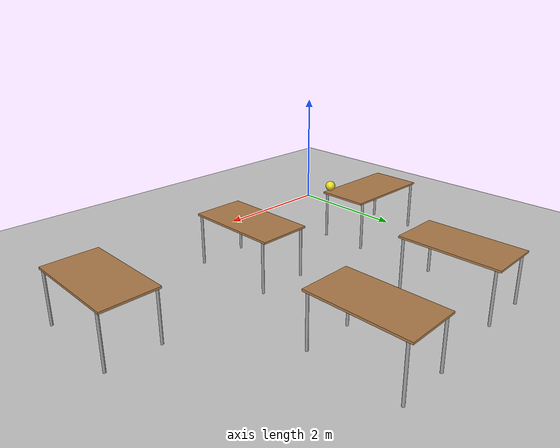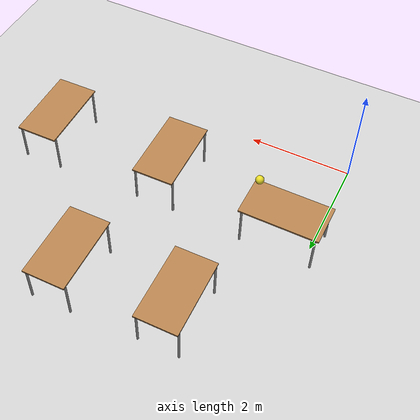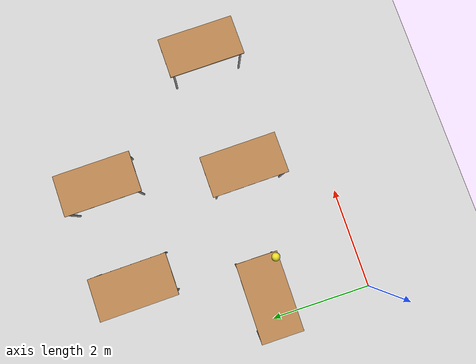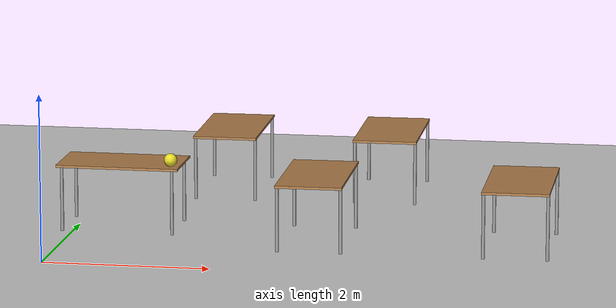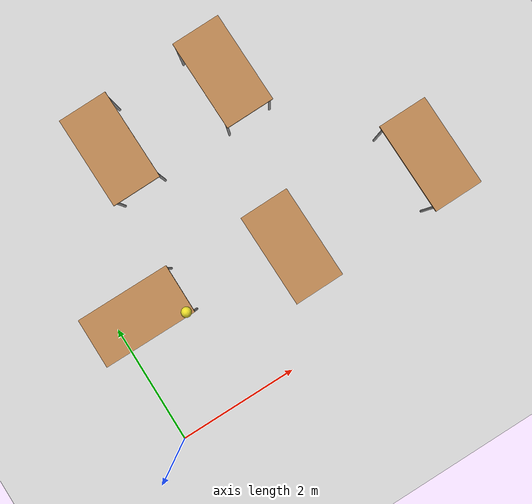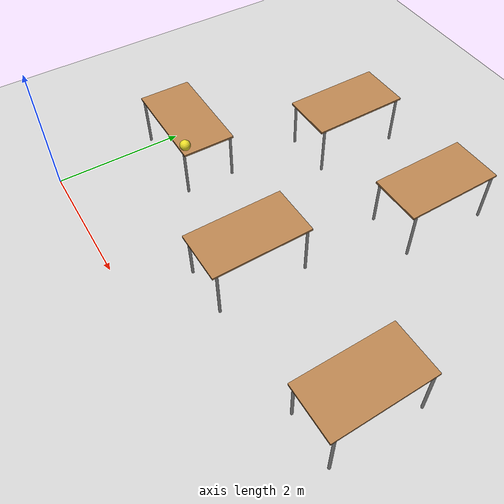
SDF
<sdf version="1.7">
 <world name="default">
  <model name="ground_plane">
   <static>1</static>
   <link name="link">
    <collision name="collision">
     <geometry><plane><normal>0 0 1</normal><size>100 100</size></plane></geometry>
     <surface>
      <contact><collide_bitmask>65535</collide_bitmask></contact>
      <friction><ode><mu>100</mu><mu2>50</mu2></ode></friction>
     </surface>
    </collision>
    <visual name="visual">
     <cast_shadows>0</cast_shadows>
     <geometry><plane><normal>0 0 1</normal><size>100 100</size></plane></geometry>
     <material>
      <script><uri>file://media/materials/scripts/gazebo.material</uri><name>Gazebo/Grey</name></script>
     </material>
    </visual>
   </link>
  </model>
  <model name="table_clone_clone">
   <link name="link">
    <inertial>
     <mass>1</mass>
     <pose>1.2 0 0.8 0 -0 0</pose>
     <inertia><ixx>1</ixx><ixy>0</ixy><ixz>0</ixz><iyy>1</iyy><iyz>0</iyz><izz>1</izz></inertia>
    </inertial>
    <visual name="back_right_leg">
     <pose>-0.68 -0.38 0.4 0 -0 0</pose>
     <geometry><cylinder><radius>0.02</radius><length>0.8</length></cylinder></geometry>
     <material>
      <script><uri>file://media/materials/scripts/gazebo.material</uri><name>Gazebo/Grey</name></script>
      <shader type="pixel"><normal_map>__default__</normal_map></shader>
      <ambient>0.3 0.3 0.3 1</ambient>
      <diffuse>0.7 0.7 0.7 1</diffuse>
      <specular>0.01 0.01 0.01 1</specular>
      <emissive>0 0 0 1</emissive>
     </material>
    </visual>
    <visual name="front_right_leg">
     <pose>0.68 -0.38 0.4 0 -0 0</pose>
     <geometry><cylinder><radius>0.02</radius><length>0.8</length></cylinder></geometry>
     <material>
      <script><uri>file://media/materials/scripts/gazebo.material</uri><name>Gazebo/Grey</name></script>
      <shader type="pixel"><normal_map>__default__</normal_map></shader>
      <ambient>0.3 0.3 0.3 1</ambient>
      <diffuse>0.7 0.7 0.7 1</diffuse>
      <specular>0.01 0.01 0.01 1</specular>
      <emissive>0 0 0 1</emissive>
     </material>
    </visual>
    <visual name="visual1">
     <pose>0 0 0.8 0 -0 0</pose>
     <geometry><box><size>1.5 0.8 0.03</size></box></geometry>
     <material>
      <script><uri>file://media/materials/scripts/gazebo.material</uri><name>Gazebo/Wood</name></script>
      <shader type="pixel"><normal_map>__default__</normal_map></shader>
      <ambient>1 1 1 1</ambient>
      <diffuse>1 1 1 1</diffuse>
      <specular>0.2 0.2 0.2 1</specular>
      <emissive>0 0 0 1</emissive>
     </material>
    </visual>
    <visual name="front_left_leg">
     <pose>0.68 0.38 0.4 0 -0 0</pose>
     <geometry><cylinder><radius>0.02</radius><length>0.8</length></cylinder></geometry>
     <material>
      <script><uri>file://media/materials/scripts/gazebo.material</uri><name>Gazebo/Grey</name></script>
      <shader type="pixel"><normal_map>__default__</normal_map></shader>
      <ambient>0.3 0.3 0.3 1</ambient>
      <diffuse>0.7 0.7 0.7 1</diffuse>
      <specular>0.01 0.01 0.01 1</specular>
      <emissive>0 0 0 1</emissive>
     </material>
    </visual>
    <visual name="back_left_leg">
     <pose>-0.68 0.38 0.4 0 -0 0</pose>
     <geometry><cylinder><radius>0.02</radius><length>0.8</length></cylinder></geometry>
     <material>
      <script><uri>file://media/materials/scripts/gazebo.material</uri><name>Gazebo/Grey</name></script>
      <shader type="pixel"><normal_map>__default__</normal_map></shader>
      <ambient>0.3 0.3 0.3 1</ambient>
      <diffuse>0.7 0.7 0.7 1</diffuse>
      <specular>0.01 0.01 0.01 1</specular>
      <emissive>0 0 0 1</emissive>
     </material>
    </visual>
    <collision name="back_right_leg">
     <pose>-0.68 -0.38 0.4 0 -0 0</pose>
     <geometry><cylinder><radius>0.02</radius><length>0.8</length></cylinder></geometry>
     <surface>
      <friction>
       <ode><mu>1</mu><mu2>1</mu2><fdir1>0 0 0</fdir1><slip1>0</slip1><slip2>0</slip2></ode>
       <torsional>
        <coefficient>1</coefficient>
        <patch_radius>0</patch_radius>
        <surface_radius>0</surface_radius>
        <use_patch_radius>1</use_patch_radius>
        <ode><slip>0</slip></ode>
       </torsional>
      </friction>
      <bounce><restitution_coefficient>0</restitution_coefficient><threshold>1e+06</threshold></bounce>
      <contact>
       <collide_without_contact>0</collide_without_contact>
       <collide_without_contact_bitmask>1</collide_without_contact_bitmask>
       <collide_bitmask>1</collide_bitmask>
       <ode>
        <soft_cfm>0</soft_cfm>
        <soft_erp>0.2</soft_erp>
        <kp>1e+13</kp>
        <kd>1</kd>
        <max_vel>0.01</max_vel>
        <min_depth>0</min_depth>
       </ode>
       <bullet>
        <split_impulse>1</split_impulse>
        <split_impulse_penetration_threshold>-0.01</split_impulse_penetration_threshold>
        <soft_cfm>0</soft_cfm>
        <soft_erp>0.2</soft_erp>
        <kp>1e+13</kp>
        <kd>1</kd>
       </bullet>
      </contact>
     </surface>
    </collision>
    <collision name="front_left_leg">
     <pose>0.68 0.38 0.4 0 -0 0</pose>
     <geometry><cylinder><radius>0.02</radius><length>0.8</length></cylinder></geometry>
     <surface>
      <friction>
       <ode><mu>1</mu><mu2>1</mu2><fdir1>0 0 0</fdir1><slip1>0</slip1><slip2>0</slip2></ode>
       <torsional>
        <coefficient>1</coefficient>
        <patch_radius>0</patch_radius>
        <surface_radius>0</surface_radius>
        <use_patch_radius>1</use_patch_radius>
        <ode><slip>0</slip></ode>
       </torsional>
      </friction>
      <bounce><restitution_coefficient>0</restitution_coefficient><threshold>1e+06</threshold></bounce>
      <contact>
       <collide_without_contact>0</collide_without_contact>
       <collide_without_contact_bitmask>1</collide_without_contact_bitmask>
       <collide_bitmask>1</collide_bitmask>
       <ode>
        <soft_cfm>0</soft_cfm>
        <soft_erp>0.2</soft_erp>
        <kp>1e+13</kp>
        <kd>1</kd>
        <max_vel>0.01</max_vel>
        <min_depth>0</min_depth>
       </ode>
       <bullet>
        <split_impulse>1</split_impulse>
        <split_impulse_penetration_threshold>-0.01</split_impulse_penetration_threshold>
        <soft_cfm>0</soft_cfm>
        <soft_erp>0.2</soft_erp>
        <kp>1e+13</kp>
        <kd>1</kd>
       </bullet>
      </contact>
     </surface>
    </collision>
    <collision name="back_left_leg">
     <pose>-0.68 0.38 0.4 0 -0 0</pose>
     <geometry><cylinder><radius>0.02</radius><length>0.8</length></cylinder></geometry>
     <surface>
      <friction>
       <ode><mu>1</mu><mu2>1</mu2><fdir1>0 0 0</fdir1><slip1>0</slip1><slip2>0</slip2></ode>
       <torsional>
        <coefficient>1</coefficient>
        <patch_radius>0</patch_radius>
        <surface_radius>0</surface_radius>
        <use_patch_radius>1</use_patch_radius>
        <ode><slip>0</slip></ode>
       </torsional>
      </friction>
      <bounce><restitution_coefficient>0</restitution_coefficient><threshold>1e+06</threshold></bounce>
      <contact>
       <collide_without_contact>0</collide_without_contact>
       <collide_without_contact_bitmask>1</collide_without_contact_bitmask>
       <collide_bitmask>1</collide_bitmask>
       <ode>
        <soft_cfm>0</soft_cfm>
        <soft_erp>0.2</soft_erp>
        <kp>1e+13</kp>
        <kd>1</kd>
        <max_vel>0.01</max_vel>
        <min_depth>0</min_depth>
       </ode>
       <bullet>
        <split_impulse>1</split_impulse>
        <split_impulse_penetration_threshold>-0.01</split_impulse_penetration_threshold>
        <soft_cfm>0</soft_cfm>
        <soft_erp>0.2</soft_erp>
        <kp>1e+13</kp>
        <kd>1</kd>
       </bullet>
      </contact>
     </surface>
    </collision>
    <collision name="surface">
     <pose>0 0 0.8 0 -0 0</pose>
     <geometry><box><size>1.5 0.8 0.03</size></box></geometry>
     <surface>
      <friction>
       <ode><mu>0.6</mu><mu2>0.6</mu2><fdir1>0 0 0</fdir1><slip1>0</slip1><slip2>0</slip2></ode>
       <torsional>
        <coefficient>1</coefficient>
        <patch_radius>0</patch_radius>
        <surface_radius>0</surface_radius>
        <use_patch_radius>1</use_patch_radius>
        <ode><slip>0</slip></ode>
       </torsional>
      </friction>
      <bounce><restitution_coefficient>0</restitution_coefficient><threshold>1e+06</threshold></bounce>
      <contact>
       <collide_without_contact>0</collide_without_contact>
       <collide_without_contact_bitmask>1</collide_without_contact_bitmask>
       <collide_bitmask>1</collide_bitmask>
       <ode>
        <soft_cfm>0</soft_cfm>
        <soft_erp>0.2</soft_erp>
        <kp>1e+13</kp>
        <kd>1</kd>
        <max_vel>0.01</max_vel>
        <min_depth>0</min_depth>
       </ode>
       <bullet>
        <split_impulse>1</split_impulse>
        <split_impulse_penetration_threshold>-0.01</split_impulse_penetration_threshold>
        <soft_cfm>0</soft_cfm>
        <soft_erp>0.2</soft_erp>
        <kp>1e+13</kp>
        <kd>1</kd>
       </bullet>
      </contact>
     </surface>
    </collision>
    <collision name="front_right_leg">
     <pose>0.68 -0.38 0.4 0 -0 0</pose>
     <geometry><cylinder><radius>0.02</radius><length>0.8</length></cylinder></geometry>
     <surface>
      <friction>
       <ode><mu>1</mu><mu2>1</mu2><fdir1>0 0 0</fdir1><slip1>0</slip1><slip2>0</slip2></ode>
       <torsional>
        <coefficient>1</coefficient>
        <patch_radius>0</patch_radius>
        <surface_radius>0</surface_radius>
        <use_patch_radius>1</use_patch_radius>
        <ode><slip>0</slip></ode>
       </torsional>
      </friction>
      <bounce><restitution_coefficient>0</restitution_coefficient><threshold>1e+06</threshold></bounce>
      <contact>
       <collide_without_contact>0</collide_without_contact>
       <collide_without_contact_bitmask>1</collide_without_contact_bitmask>
       <collide_bitmask>1</collide_bitmask>
       <ode>
        <soft_cfm>0</soft_cfm>
        <soft_erp>0.2</soft_erp>
        <kp>1e+13</kp>
        <kd>1</kd>
        <max_vel>0.01</max_vel>
        <min_depth>0</min_depth>
       </ode>
       <bullet>
        <split_impulse>1</split_impulse>
        <split_impulse_penetration_threshold>-0.01</split_impulse_penetration_threshold>
        <soft_cfm>0</soft_cfm>
        <soft_erp>0.2</soft_erp>
        <kp>1e+13</kp>
        <kd>1</kd>
       </bullet>
      </contact>
     </surface>
    </collision>
   </link>
   <static>1</static>
   <pose>1.49993 4.29823 0 0 0 -1.55553</pose>
  </model>
  <model name="table_clone_clone_0">
   <link name="link">
    <inertial>
     <mass>1</mass>
     <pose>1.2 0 0.8 0 -0 0</pose>
     <inertia><ixx>1</ixx><ixy>0</ixy><ixz>0</ixz><iyy>1</iyy><iyz>0</iyz><izz>1</izz></inertia>
    </inertial>
    <visual name="back_right_leg">
     <pose>-0.68 -0.38 0.4 0 -0 0</pose>
     <geometry><cylinder><radius>0.02</radius><length>0.8</length></cylinder></geometry>
     <material>
      <script><uri>file://media/materials/scripts/gazebo.material</uri><name>Gazebo/Grey</name></script>
      <shader type="pixel"><normal_map>__default__</normal_map></shader>
      <ambient>0.3 0.3 0.3 1</ambient>
      <diffuse>0.7 0.7 0.7 1</diffuse>
      <specular>0.01 0.01 0.01 1</specular>
      <emissive>0 0 0 1</emissive>
     </material>
    </visual>
    <visual name="front_right_leg">
     <pose>0.68 -0.38 0.4 0 -0 0</pose>
     <geometry><cylinder><radius>0.02</radius><length>0.8</length></cylinder></geometry>
     <material>
      <script><uri>file://media/materials/scripts/gazebo.material</uri><name>Gazebo/Grey</name></script>
      <shader type="pixel"><normal_map>__default__</normal_map></shader>
      <ambient>0.3 0.3 0.3 1</ambient>
      <diffuse>0.7 0.7 0.7 1</diffuse>
      <specular>0.01 0.01 0.01 1</specular>
      <emissive>0 0 0 1</emissive>
     </material>
    </visual>
    <visual name="visual1">
     <pose>0 0 0.8 0 -0 0</pose>
     <geometry><box><size>1.5 0.8 0.03</size></box></geometry>
     <material>
      <script><uri>file://media/materials/scripts/gazebo.material</uri><name>Gazebo/Wood</name></script>
      <shader type="pixel"><normal_map>__default__</normal_map></shader>
      <ambient>1 1 1 1</ambient>
      <diffuse>1 1 1 1</diffuse>
      <specular>0.2 0.2 0.2 1</specular>
      <emissive>0 0 0 1</emissive>
     </material>
    </visual>
    <visual name="front_left_leg">
     <pose>0.68 0.38 0.4 0 -0 0</pose>
     <geometry><cylinder><radius>0.02</radius><length>0.8</length></cylinder></geometry>
     <material>
      <script><uri>file://media/materials/scripts/gazebo.material</uri><name>Gazebo/Grey</name></script>
      <shader type="pixel"><normal_map>__default__</normal_map></shader>
      <ambient>0.3 0.3 0.3 1</ambient>
      <diffuse>0.7 0.7 0.7 1</diffuse>
      <specular>0.01 0.01 0.01 1</specular>
      <emissive>0 0 0 1</emissive>
     </material>
    </visual>
    <visual name="back_left_leg">
     <pose>-0.68 0.38 0.4 0 -0 0</pose>
     <geometry><cylinder><radius>0.02</radius><length>0.8</length></cylinder></geometry>
     <material>
      <script><uri>file://media/materials/scripts/gazebo.material</uri><name>Gazebo/Grey</name></script>
      <shader type="pixel"><normal_map>__default__</normal_map></shader>
      <ambient>0.3 0.3 0.3 1</ambient>
      <diffuse>0.7 0.7 0.7 1</diffuse>
      <specular>0.01 0.01 0.01 1</specular>
      <emissive>0 0 0 1</emissive>
     </material>
    </visual>
    <collision name="back_right_leg">
     <pose>-0.68 -0.38 0.4 0 -0 0</pose>
     <geometry><cylinder><radius>0.02</radius><length>0.8</length></cylinder></geometry>
     <surface>
      <friction>
       <ode><mu>1</mu><mu2>1</mu2><fdir1>0 0 0</fdir1><slip1>0</slip1><slip2>0</slip2></ode>
       <torsional>
        <coefficient>1</coefficient>
        <patch_radius>0</patch_radius>
        <surface_radius>0</surface_radius>
        <use_patch_radius>1</use_patch_radius>
        <ode><slip>0</slip></ode>
       </torsional>
      </friction>
      <bounce><restitution_coefficient>0</restitution_coefficient><threshold>1e+06</threshold></bounce>
      <contact>
       <collide_without_contact>0</collide_without_contact>
       <collide_without_contact_bitmask>1</collide_without_contact_bitmask>
       <collide_bitmask>1</collide_bitmask>
       <ode>
        <soft_cfm>0</soft_cfm>
        <soft_erp>0.2</soft_erp>
        <kp>1e+13</kp>
        <kd>1</kd>
        <max_vel>0.01</max_vel>
        <min_depth>0</min_depth>
       </ode>
       <bullet>
        <split_impulse>1</split_impulse>
        <split_impulse_penetration_threshold>-0.01</split_impulse_penetration_threshold>
        <soft_cfm>0</soft_cfm>
        <soft_erp>0.2</soft_erp>
        <kp>1e+13</kp>
        <kd>1</kd>
       </bullet>
      </contact>
     </surface>
    </collision>
    <collision name="front_left_leg">
     <pose>0.68 0.38 0.4 0 -0 0</pose>
     <geometry><cylinder><radius>0.02</radius><length>0.8</length></cylinder></geometry>
     <surface>
      <friction>
       <ode><mu>1</mu><mu2>1</mu2><fdir1>0 0 0</fdir1><slip1>0</slip1><slip2>0</slip2></ode>
       <torsional>
        <coefficient>1</coefficient>
        <patch_radius>0</patch_radius>
        <surface_radius>0</surface_radius>
        <use_patch_radius>1</use_patch_radius>
        <ode><slip>0</slip></ode>
       </torsional>
      </friction>
      <bounce><restitution_coefficient>0</restitution_coefficient><threshold>1e+06</threshold></bounce>
      <contact>
       <collide_without_contact>0</collide_without_contact>
       <collide_without_contact_bitmask>1</collide_without_contact_bitmask>
       <collide_bitmask>1</collide_bitmask>
       <ode>
        <soft_cfm>0</soft_cfm>
        <soft_erp>0.2</soft_erp>
        <kp>1e+13</kp>
        <kd>1</kd>
        <max_vel>0.01</max_vel>
        <min_depth>0</min_depth>
       </ode>
       <bullet>
        <split_impulse>1</split_impulse>
        <split_impulse_penetration_threshold>-0.01</split_impulse_penetration_threshold>
        <soft_cfm>0</soft_cfm>
        <soft_erp>0.2</soft_erp>
        <kp>1e+13</kp>
        <kd>1</kd>
       </bullet>
      </contact>
     </surface>
    </collision>
    <collision name="back_left_leg">
     <pose>-0.68 0.38 0.4 0 -0 0</pose>
     <geometry><cylinder><radius>0.02</radius><length>0.8</length></cylinder></geometry>
     <surface>
      <friction>
       <ode><mu>1</mu><mu2>1</mu2><fdir1>0 0 0</fdir1><slip1>0</slip1><slip2>0</slip2></ode>
       <torsional>
        <coefficient>1</coefficient>
        <patch_radius>0</patch_radius>
        <surface_radius>0</surface_radius>
        <use_patch_radius>1</use_patch_radius>
        <ode><slip>0</slip></ode>
       </torsional>
      </friction>
      <bounce><restitution_coefficient>0</restitution_coefficient><threshold>1e+06</threshold></bounce>
      <contact>
       <collide_without_contact>0</collide_without_contact>
       <collide_without_contact_bitmask>1</collide_without_contact_bitmask>
       <collide_bitmask>1</collide_bitmask>
       <ode>
        <soft_cfm>0</soft_cfm>
        <soft_erp>0.2</soft_erp>
        <kp>1e+13</kp>
        <kd>1</kd>
        <max_vel>0.01</max_vel>
        <min_depth>0</min_depth>
       </ode>
       <bullet>
        <split_impulse>1</split_impulse>
        <split_impulse_penetration_threshold>-0.01</split_impulse_penetration_threshold>
        <soft_cfm>0</soft_cfm>
        <soft_erp>0.2</soft_erp>
        <kp>1e+13</kp>
        <kd>1</kd>
       </bullet>
      </contact>
     </surface>
    </collision>
    <collision name="surface">
     <pose>0 0 0.8 0 -0 0</pose>
     <geometry><box><size>1.5 0.8 0.03</size></box></geometry>
     <surface>
      <friction>
       <ode><mu>0.6</mu><mu2>0.6</mu2><fdir1>0 0 0</fdir1><slip1>0</slip1><slip2>0</slip2></ode>
       <torsional>
        <coefficient>1</coefficient>
        <patch_radius>0</patch_radius>
        <surface_radius>0</surface_radius>
        <use_patch_radius>1</use_patch_radius>
        <ode><slip>0</slip></ode>
       </torsional>
      </friction>
      <bounce><restitution_coefficient>0</restitution_coefficient><threshold>1e+06</threshold></bounce>
      <contact>
       <collide_without_contact>0</collide_without_contact>
       <collide_without_contact_bitmask>1</collide_without_contact_bitmask>
       <collide_bitmask>1</collide_bitmask>
       <ode>
        <soft_cfm>0</soft_cfm>
        <soft_erp>0.2</soft_erp>
        <kp>1e+13</kp>
        <kd>1</kd>
        <max_vel>0.01</max_vel>
        <min_depth>0</min_depth>
       </ode>
       <bullet>
        <split_impulse>1</split_impulse>
        <split_impulse_penetration_threshold>-0.01</split_impulse_penetration_threshold>
        <soft_cfm>0</soft_cfm>
        <soft_erp>0.2</soft_erp>
        <kp>1e+13</kp>
        <kd>1</kd>
       </bullet>
      </contact>
     </surface>
    </collision>
    <collision name="front_right_leg">
     <pose>0.68 -0.38 0.4 0 -0 0</pose>
     <geometry><cylinder><radius>0.02</radius><length>0.8</length></cylinder></geometry>
     <surface>
      <friction>
       <ode><mu>1</mu><mu2>1</mu2><fdir1>0 0 0</fdir1><slip1>0</slip1><slip2>0</slip2></ode>
       <torsional>
        <coefficient>1</coefficient>
        <patch_radius>0</patch_radius>
        <surface_radius>0</surface_radius>
        <use_patch_radius>1</use_patch_radius>
        <ode><slip>0</slip></ode>
       </torsional>
      </friction>
      <bounce><restitution_coefficient>0</restitution_coefficient><threshold>1e+06</threshold></bounce>
      <contact>
       <collide_without_contact>0</collide_without_contact>
       <collide_without_contact_bitmask>1</collide_without_contact_bitmask>
       <collide_bitmask>1</collide_bitmask>
       <ode>
        <soft_cfm>0</soft_cfm>
        <soft_erp>0.2</soft_erp>
        <kp>1e+13</kp>
        <kd>1</kd>
        <max_vel>0.01</max_vel>
        <min_depth>0</min_depth>
       </ode>
       <bullet>
        <split_impulse>1</split_impulse>
        <split_impulse_penetration_threshold>-0.01</split_impulse_penetration_threshold>
        <soft_cfm>0</soft_cfm>
        <soft_erp>0.2</soft_erp>
        <kp>1e+13</kp>
        <kd>1</kd>
       </bullet>
      </contact>
     </surface>
    </collision>
   </link>
   <static>1</static>
   <pose>3.51901 4.38519 0 0 0 -1.55553</pose>
  </model>
  <model name="table_clone_clone_8">
   <link name="link">
    <inertial>
     <mass>1</mass>
     <pose>1.2 0 0.8 0 -0 0</pose>
     <inertia><ixx>1</ixx><ixy>0</ixy><ixz>0</ixz><iyy>1</iyy><iyz>0</iyz><izz>1</izz></inertia>
    </inertial>
    <visual name="back_right_leg">
     <pose>-0.68 -0.38 0.4 0 -0 0</pose>
     <geometry><cylinder><radius>0.02</radius><length>0.8</length></cylinder></geometry>
     <material>
      <script><uri>file://media/materials/scripts/gazebo.material</uri><name>Gazebo/Grey</name></script>
      <shader type="pixel"><normal_map>__default__</normal_map></shader>
      <ambient>0.3 0.3 0.3 1</ambient>
      <diffuse>0.7 0.7 0.7 1</diffuse>
      <specular>0.01 0.01 0.01 1</specular>
      <emissive>0 0 0 1</emissive>
     </material>
    </visual>
    <visual name="front_right_leg">
     <pose>0.68 -0.38 0.4 0 -0 0</pose>
     <geometry><cylinder><radius>0.02</radius><length>0.8</length></cylinder></geometry>
     <material>
      <script><uri>file://media/materials/scripts/gazebo.material</uri><name>Gazebo/Grey</name></script>
      <shader type="pixel"><normal_map>__default__</normal_map></shader>
      <ambient>0.3 0.3 0.3 1</ambient>
      <diffuse>0.7 0.7 0.7 1</diffuse>
      <specular>0.01 0.01 0.01 1</specular>
      <emissive>0 0 0 1</emissive>
     </material>
    </visual>
    <visual name="visual1">
     <pose>0 0 0.8 0 -0 0</pose>
     <geometry><box><size>1.5 0.8 0.03</size></box></geometry>
     <material>
      <script><uri>file://media/materials/scripts/gazebo.material</uri><name>Gazebo/Wood</name></script>
      <shader type="pixel"><normal_map>__default__</normal_map></shader>
      <ambient>1 1 1 1</ambient>
      <diffuse>1 1 1 1</diffuse>
      <specular>0.2 0.2 0.2 1</specular>
      <emissive>0 0 0 1</emissive>
     </material>
    </visual>
    <visual name="front_left_leg">
     <pose>0.68 0.38 0.4 0 -0 0</pose>
     <geometry><cylinder><radius>0.02</radius><length>0.8</length></cylinder></geometry>
     <material>
      <script><uri>file://media/materials/scripts/gazebo.material</uri><name>Gazebo/Grey</name></script>
      <shader type="pixel"><normal_map>__default__</normal_map></shader>
      <ambient>0.3 0.3 0.3 1</ambient>
      <diffuse>0.7 0.7 0.7 1</diffuse>
      <specular>0.01 0.01 0.01 1</specular>
      <emissive>0 0 0 1</emissive>
     </material>
    </visual>
    <visual name="back_left_leg">
     <pose>-0.68 0.38 0.4 0 -0 0</pose>
     <geometry><cylinder><radius>0.02</radius><length>0.8</length></cylinder></geometry>
     <material>
      <script><uri>file://media/materials/scripts/gazebo.material</uri><name>Gazebo/Grey</name></script>
      <shader type="pixel"><normal_map>__default__</normal_map></shader>
      <ambient>0.3 0.3 0.3 1</ambient>
      <diffuse>0.7 0.7 0.7 1</diffuse>
      <specular>0.01 0.01 0.01 1</specular>
      <emissive>0 0 0 1</emissive>
     </material>
    </visual>
    <collision name="back_right_leg">
     <pose>-0.68 -0.38 0.4 0 -0 0</pose>
     <geometry><cylinder><radius>0.02</radius><length>0.8</length></cylinder></geometry>
     <surface>
      <friction>
       <ode><mu>1</mu><mu2>1</mu2><fdir1>0 0 0</fdir1><slip1>0</slip1><slip2>0</slip2></ode>
       <torsional>
        <coefficient>1</coefficient>
        <patch_radius>0</patch_radius>
        <surface_radius>0</surface_radius>
        <use_patch_radius>1</use_patch_radius>
        <ode><slip>0</slip></ode>
       </torsional>
      </friction>
      <bounce><restitution_coefficient>0</restitution_coefficient><threshold>1e+06</threshold></bounce>
      <contact>
       <collide_without_contact>0</collide_without_contact>
       <collide_without_contact_bitmask>1</collide_without_contact_bitmask>
       <collide_bitmask>1</collide_bitmask>
       <ode>
        <soft_cfm>0</soft_cfm>
        <soft_erp>0.2</soft_erp>
        <kp>1e+13</kp>
        <kd>1</kd>
        <max_vel>0.01</max_vel>
        <min_depth>0</min_depth>
       </ode>
       <bullet>
        <split_impulse>1</split_impulse>
        <split_impulse_penetration_threshold>-0.01</split_impulse_penetration_threshold>
        <soft_cfm>0</soft_cfm>
        <soft_erp>0.2</soft_erp>
        <kp>1e+13</kp>
        <kd>1</kd>
       </bullet>
      </contact>
     </surface>
    </collision>
    <collision name="front_left_leg">
     <pose>0.68 0.38 0.4 0 -0 0</pose>
     <geometry><cylinder><radius>0.02</radius><length>0.8</length></cylinder></geometry>
     <surface>
      <friction>
       <ode><mu>1</mu><mu2>1</mu2><fdir1>0 0 0</fdir1><slip1>0</slip1><slip2>0</slip2></ode>
       <torsional>
        <coefficient>1</coefficient>
        <patch_radius>0</patch_radius>
        <surface_radius>0</surface_radius>
        <use_patch_radius>1</use_patch_radius>
        <ode><slip>0</slip></ode>
       </torsional>
      </friction>
      <bounce><restitution_coefficient>0</restitution_coefficient><threshold>1e+06</threshold></bounce>
      <contact>
       <collide_without_contact>0</collide_without_contact>
       <collide_without_contact_bitmask>1</collide_without_contact_bitmask>
       <collide_bitmask>1</collide_bitmask>
       <ode>
        <soft_cfm>0</soft_cfm>
        <soft_erp>0.2</soft_erp>
        <kp>1e+13</kp>
        <kd>1</kd>
        <max_vel>0.01</max_vel>
        <min_depth>0</min_depth>
       </ode>
       <bullet>
        <split_impulse>1</split_impulse>
        <split_impulse_penetration_threshold>-0.01</split_impulse_penetration_threshold>
        <soft_cfm>0</soft_cfm>
        <soft_erp>0.2</soft_erp>
        <kp>1e+13</kp>
        <kd>1</kd>
       </bullet>
      </contact>
     </surface>
    </collision>
    <collision name="back_left_leg">
     <pose>-0.68 0.38 0.4 0 -0 0</pose>
     <geometry><cylinder><radius>0.02</radius><length>0.8</length></cylinder></geometry>
     <surface>
      <friction>
       <ode><mu>1</mu><mu2>1</mu2><fdir1>0 0 0</fdir1><slip1>0</slip1><slip2>0</slip2></ode>
       <torsional>
        <coefficient>1</coefficient>
        <patch_radius>0</patch_radius>
        <surface_radius>0</surface_radius>
        <use_patch_radius>1</use_patch_radius>
        <ode><slip>0</slip></ode>
       </torsional>
      </friction>
      <bounce><restitution_coefficient>0</restitution_coefficient><threshold>1e+06</threshold></bounce>
      <contact>
       <collide_without_contact>0</collide_without_contact>
       <collide_without_contact_bitmask>1</collide_without_contact_bitmask>
       <collide_bitmask>1</collide_bitmask>
       <ode>
        <soft_cfm>0</soft_cfm>
        <soft_erp>0.2</soft_erp>
        <kp>1e+13</kp>
        <kd>1</kd>
        <max_vel>0.01</max_vel>
        <min_depth>0</min_depth>
       </ode>
       <bullet>
        <split_impulse>1</split_impulse>
        <split_impulse_penetration_threshold>-0.01</split_impulse_penetration_threshold>
        <soft_cfm>0</soft_cfm>
        <soft_erp>0.2</soft_erp>
        <kp>1e+13</kp>
        <kd>1</kd>
       </bullet>
      </contact>
     </surface>
    </collision>
    <collision name="surface">
     <pose>0 0 0.8 0 -0 0</pose>
     <geometry><box><size>1.5 0.8 0.03</size></box></geometry>
     <surface>
      <friction>
       <ode><mu>0.6</mu><mu2>0.6</mu2><fdir1>0 0 0</fdir1><slip1>0</slip1><slip2>0</slip2></ode>
       <torsional>
        <coefficient>1</coefficient>
        <patch_radius>0</patch_radius>
        <surface_radius>0</surface_radius>
        <use_patch_radius>1</use_patch_radius>
        <ode><slip>0</slip></ode>
       </torsional>
      </friction>
      <bounce><restitution_coefficient>0</restitution_coefficient><threshold>1e+06</threshold></bounce>
      <contact>
       <collide_without_contact>0</collide_without_contact>
       <collide_without_contact_bitmask>1</collide_without_contact_bitmask>
       <collide_bitmask>1</collide_bitmask>
       <ode>
        <soft_cfm>0</soft_cfm>
        <soft_erp>0.2</soft_erp>
        <kp>1e+13</kp>
        <kd>1</kd>
        <max_vel>0.01</max_vel>
        <min_depth>0</min_depth>
       </ode>
       <bullet>
        <split_impulse>1</split_impulse>
        <split_impulse_penetration_threshold>-0.01</split_impulse_penetration_threshold>
        <soft_cfm>0</soft_cfm>
        <soft_erp>0.2</soft_erp>
        <kp>1e+13</kp>
        <kd>1</kd>
       </bullet>
      </contact>
     </surface>
    </collision>
    <collision name="front_right_leg">
     <pose>0.68 -0.38 0.4 0 -0 0</pose>
     <geometry><cylinder><radius>0.02</radius><length>0.8</length></cylinder></geometry>
     <surface>
      <friction>
       <ode><mu>1</mu><mu2>1</mu2><fdir1>0 0 0</fdir1><slip1>0</slip1><slip2>0</slip2></ode>
       <torsional>
        <coefficient>1</coefficient>
        <patch_radius>0</patch_radius>
        <surface_radius>0</surface_radius>
        <use_patch_radius>1</use_patch_radius>
        <ode><slip>0</slip></ode>
       </torsional>
      </friction>
      <bounce><restitution_coefficient>0</restitution_coefficient><threshold>1e+06</threshold></bounce>
      <contact>
       <collide_without_contact>0</collide_without_contact>
       <collide_without_contact_bitmask>1</collide_without_contact_bitmask>
       <collide_bitmask>1</collide_bitmask>
       <ode>
        <soft_cfm>0</soft_cfm>
        <soft_erp>0.2</soft_erp>
        <kp>1e+13</kp>
        <kd>1</kd>
        <max_vel>0.01</max_vel>
        <min_depth>0</min_depth>
       </ode>
       <bullet>
        <split_impulse>1</split_impulse>
        <split_impulse_penetration_threshold>-0.01</split_impulse_penetration_threshold>
        <soft_cfm>0</soft_cfm>
        <soft_erp>0.2</soft_erp>
        <kp>1e+13</kp>
        <kd>1</kd>
       </bullet>
      </contact>
     </surface>
    </collision>
   </link>
   <static>1</static>
   <pose>2.99961 1.65581 0 0 0 -1.55553</pose>
  </model>
  <model name="table_clone_clone_13">
   <link name="link">
    <inertial>
     <mass>1</mass>
     <pose>1.2 0 0.8 0 -0 0</pose>
     <inertia><ixx>1</ixx><ixy>0</ixy><ixz>0</ixz><iyy>1</iyy><iyz>0</iyz><izz>1</izz></inertia>
    </inertial>
    <visual name="back_right_leg">
     <pose>-0.68 -0.38 0.4 0 -0 0</pose>
     <geometry><cylinder><radius>0.02</radius><length>0.8</length></cylinder></geometry>
     <material>
      <script><uri>file://media/materials/scripts/gazebo.material</uri><name>Gazebo/Grey</name></script>
      <shader type="pixel"><normal_map>__default__</normal_map></shader>
      <ambient>0.3 0.3 0.3 1</ambient>
      <diffuse>0.7 0.7 0.7 1</diffuse>
      <specular>0.01 0.01 0.01 1</specular>
      <emissive>0 0 0 1</emissive>
     </material>
    </visual>
    <visual name="front_right_leg">
     <pose>0.68 -0.38 0.4 0 -0 0</pose>
     <geometry><cylinder><radius>0.02</radius><length>0.8</length></cylinder></geometry>
     <material>
      <script><uri>file://media/materials/scripts/gazebo.material</uri><name>Gazebo/Grey</name></script>
      <shader type="pixel"><normal_map>__default__</normal_map></shader>
      <ambient>0.3 0.3 0.3 1</ambient>
      <diffuse>0.7 0.7 0.7 1</diffuse>
      <specular>0.01 0.01 0.01 1</specular>
      <emissive>0 0 0 1</emissive>
     </material>
    </visual>
    <visual name="visual1">
     <pose>0 0 0.8 0 -0 0</pose>
     <geometry><box><size>1.5 0.8 0.03</size></box></geometry>
     <material>
      <script><uri>file://media/materials/scripts/gazebo.material</uri><name>Gazebo/Wood</name></script>
      <shader type="pixel"><normal_map>__default__</normal_map></shader>
      <ambient>1 1 1 1</ambient>
      <diffuse>1 1 1 1</diffuse>
      <specular>0.2 0.2 0.2 1</specular>
      <emissive>0 0 0 1</emissive>
     </material>
    </visual>
    <visual name="front_left_leg">
     <pose>0.68 0.38 0.4 0 -0 0</pose>
     <geometry><cylinder><radius>0.02</radius><length>0.8</length></cylinder></geometry>
     <material>
      <script><uri>file://media/materials/scripts/gazebo.material</uri><name>Gazebo/Grey</name></script>
      <shader type="pixel"><normal_map>__default__</normal_map></shader>
      <ambient>0.3 0.3 0.3 1</ambient>
      <diffuse>0.7 0.7 0.7 1</diffuse>
      <specular>0.01 0.01 0.01 1</specular>
      <emissive>0 0 0 1</emissive>
     </material>
    </visual>
    <visual name="back_left_leg">
     <pose>-0.68 0.38 0.4 0 -0 0</pose>
     <geometry><cylinder><radius>0.02</radius><length>0.8</length></cylinder></geometry>
     <material>
      <script><uri>file://media/materials/scripts/gazebo.material</uri><name>Gazebo/Grey</name></script>
      <shader type="pixel"><normal_map>__default__</normal_map></shader>
      <ambient>0.3 0.3 0.3 1</ambient>
      <diffuse>0.7 0.7 0.7 1</diffuse>
      <specular>0.01 0.01 0.01 1</specular>
      <emissive>0 0 0 1</emissive>
     </material>
    </visual>
    <collision name="back_right_leg">
     <pose>-0.68 -0.38 0.4 0 -0 0</pose>
     <geometry><cylinder><radius>0.02</radius><length>0.8</length></cylinder></geometry>
     <surface>
      <friction>
       <ode><mu>1</mu><mu2>1</mu2><fdir1>0 0 0</fdir1><slip1>0</slip1><slip2>0</slip2></ode>
       <torsional>
        <coefficient>1</coefficient>
        <patch_radius>0</patch_radius>
        <surface_radius>0</surface_radius>
        <use_patch_radius>1</use_patch_radius>
        <ode><slip>0</slip></ode>
       </torsional>
      </friction>
      <bounce><restitution_coefficient>0</restitution_coefficient><threshold>1e+06</threshold></bounce>
      <contact>
       <collide_without_contact>0</collide_without_contact>
       <collide_without_contact_bitmask>1</collide_without_contact_bitmask>
       <collide_bitmask>1</collide_bitmask>
       <ode>
        <soft_cfm>0</soft_cfm>
        <soft_erp>0.2</soft_erp>
        <kp>1e+13</kp>
        <kd>1</kd>
        <max_vel>0.01</max_vel>
        <min_depth>0</min_depth>
       </ode>
       <bullet>
        <split_impulse>1</split_impulse>
        <split_impulse_penetration_threshold>-0.01</split_impulse_penetration_threshold>
        <soft_cfm>0</soft_cfm>
        <soft_erp>0.2</soft_erp>
        <kp>1e+13</kp>
        <kd>1</kd>
       </bullet>
      </contact>
     </surface>
    </collision>
    <collision name="front_left_leg">
     <pose>0.68 0.38 0.4 0 -0 0</pose>
     <geometry><cylinder><radius>0.02</radius><length>0.8</length></cylinder></geometry>
     <surface>
      <friction>
       <ode><mu>1</mu><mu2>1</mu2><fdir1>0 0 0</fdir1><slip1>0</slip1><slip2>0</slip2></ode>
       <torsional>
        <coefficient>1</coefficient>
        <patch_radius>0</patch_radius>
        <surface_radius>0</surface_radius>
        <use_patch_radius>1</use_patch_radius>
        <ode><slip>0</slip></ode>
       </torsional>
      </friction>
      <bounce><restitution_coefficient>0</restitution_coefficient><threshold>1e+06</threshold></bounce>
      <contact>
       <collide_without_contact>0</collide_without_contact>
       <collide_without_contact_bitmask>1</collide_without_contact_bitmask>
       <collide_bitmask>1</collide_bitmask>
       <ode>
        <soft_cfm>0</soft_cfm>
        <soft_erp>0.2</soft_erp>
        <kp>1e+13</kp>
        <kd>1</kd>
        <max_vel>0.01</max_vel>
        <min_depth>0</min_depth>
       </ode>
       <bullet>
        <split_impulse>1</split_impulse>
        <split_impulse_penetration_threshold>-0.01</split_impulse_penetration_threshold>
        <soft_cfm>0</soft_cfm>
        <soft_erp>0.2</soft_erp>
        <kp>1e+13</kp>
        <kd>1</kd>
       </bullet>
      </contact>
     </surface>
    </collision>
    <collision name="back_left_leg">
     <pose>-0.68 0.38 0.4 0 -0 0</pose>
     <geometry><cylinder><radius>0.02</radius><length>0.8</length></cylinder></geometry>
     <surface>
      <friction>
       <ode><mu>1</mu><mu2>1</mu2><fdir1>0 0 0</fdir1><slip1>0</slip1><slip2>0</slip2></ode>
       <torsional>
        <coefficient>1</coefficient>
        <patch_radius>0</patch_radius>
        <surface_radius>0</surface_radius>
        <use_patch_radius>1</use_patch_radius>
        <ode><slip>0</slip></ode>
       </torsional>
      </friction>
      <bounce><restitution_coefficient>0</restitution_coefficient><threshold>1e+06</threshold></bounce>
      <contact>
       <collide_without_contact>0</collide_without_contact>
       <collide_without_contact_bitmask>1</collide_without_contact_bitmask>
       <collide_bitmask>1</collide_bitmask>
       <ode>
        <soft_cfm>0</soft_cfm>
        <soft_erp>0.2</soft_erp>
        <kp>1e+13</kp>
        <kd>1</kd>
        <max_vel>0.01</max_vel>
        <min_depth>0</min_depth>
       </ode>
       <bullet>
        <split_impulse>1</split_impulse>
        <split_impulse_penetration_threshold>-0.01</split_impulse_penetration_threshold>
        <soft_cfm>0</soft_cfm>
        <soft_erp>0.2</soft_erp>
        <kp>1e+13</kp>
        <kd>1</kd>
       </bullet>
      </contact>
     </surface>
    </collision>
    <collision name="surface">
     <pose>0 0 0.8 0 -0 0</pose>
     <geometry><box><size>1.5 0.8 0.03</size></box></geometry>
     <surface>
      <friction>
       <ode><mu>0.6</mu><mu2>0.6</mu2><fdir1>0 0 0</fdir1><slip1>0</slip1><slip2>0</slip2></ode>
       <torsional>
        <coefficient>1</coefficient>
        <patch_radius>0</patch_radius>
        <surface_radius>0</surface_radius>
        <use_patch_radius>1</use_patch_radius>
        <ode><slip>0</slip></ode>
       </torsional>
      </friction>
      <bounce><restitution_coefficient>0</restitution_coefficient><threshold>1e+06</threshold></bounce>
      <contact>
       <collide_without_contact>0</collide_without_contact>
       <collide_without_contact_bitmask>1</collide_without_contact_bitmask>
       <collide_bitmask>1</collide_bitmask>
       <ode>
        <soft_cfm>0</soft_cfm>
        <soft_erp>0.2</soft_erp>
        <kp>1e+13</kp>
        <kd>1</kd>
        <max_vel>0.01</max_vel>
        <min_depth>0</min_depth>
       </ode>
       <bullet>
        <split_impulse>1</split_impulse>
        <split_impulse_penetration_threshold>-0.01</split_impulse_penetration_threshold>
        <soft_cfm>0</soft_cfm>
        <soft_erp>0.2</soft_erp>
        <kp>1e+13</kp>
        <kd>1</kd>
       </bullet>
      </contact>
     </surface>
    </collision>
    <collision name="front_right_leg">
     <pose>0.68 -0.38 0.4 0 -0 0</pose>
     <geometry><cylinder><radius>0.02</radius><length>0.8</length></cylinder></geometry>
     <surface>
      <friction>
       <ode><mu>1</mu><mu2>1</mu2><fdir1>0 0 0</fdir1><slip1>0</slip1><slip2>0</slip2></ode>
       <torsional>
        <coefficient>1</coefficient>
        <patch_radius>0</patch_radius>
        <surface_radius>0</surface_radius>
        <use_patch_radius>1</use_patch_radius>
        <ode><slip>0</slip></ode>
       </torsional>
      </friction>
      <bounce><restitution_coefficient>0</restitution_coefficient><threshold>1e+06</threshold></bounce>
      <contact>
       <collide_without_contact>0</collide_without_contact>
       <collide_without_contact_bitmask>1</collide_without_contact_bitmask>
       <collide_bitmask>1</collide_bitmask>
       <ode>
        <soft_cfm>0</soft_cfm>
        <soft_erp>0.2</soft_erp>
        <kp>1e+13</kp>
        <kd>1</kd>
        <max_vel>0.01</max_vel>
        <min_depth>0</min_depth>
       </ode>
       <bullet>
        <split_impulse>1</split_impulse>
        <split_impulse_penetration_threshold>-0.01</split_impulse_penetration_threshold>
        <soft_cfm>0</soft_cfm>
        <soft_erp>0.2</soft_erp>
        <kp>1e+13</kp>
        <kd>1</kd>
       </bullet>
      </contact>
     </surface>
    </collision>
   </link>
   <static>1</static>
   <pose>5.44874 1.71095 0 0 0 -1.55553</pose>
  </model>
  <model name="table_clone_0">
   <link name="link">
    <inertial>
     <mass>1</mass>
     <pose>1.2 0 0.8 0 -0 0</pose>
     <inertia><ixx>1</ixx><ixy>0</ixy><ixz>0</ixz><iyy>1</iyy><iyz>0</iyz><izz>1</izz></inertia>
    </inertial>
    <visual name="back_right_leg">
     <pose>-0.68 -0.38 0.4 0 -0 0</pose>
     <geometry><cylinder><radius>0.02</radius><length>0.8</length></cylinder></geometry>
     <material>
      <script><uri>file://media/materials/scripts/gazebo.material</uri><name>Gazebo/Grey</name></script>
      <shader type="pixel"><normal_map>__default__</normal_map></shader>
      <ambient>0.3 0.3 0.3 1</ambient>
      <diffuse>0.7 0.7 0.7 1</diffuse>
      <specular>0.01 0.01 0.01 1</specular>
      <emissive>0 0 0 1</emissive>
     </material>
    </visual>
    <visual name="front_right_leg">
     <pose>0.68 -0.38 0.4 0 -0 0</pose>
     <geometry><cylinder><radius>0.02</radius><length>0.8</length></cylinder></geometry>
     <material>
      <script><uri>file://media/materials/scripts/gazebo.material</uri><name>Gazebo/Grey</name></script>
      <shader type="pixel"><normal_map>__default__</normal_map></shader>
      <ambient>0.3 0.3 0.3 1</ambient>
      <diffuse>0.7 0.7 0.7 1</diffuse>
      <specular>0.01 0.01 0.01 1</specular>
      <emissive>0 0 0 1</emissive>
     </material>
    </visual>
    <visual name="visual1">
     <pose>0 0 0.8 0 -0 0</pose>
     <geometry><box><size>1.5 0.8 0.03</size></box></geometry>
     <material>
      <script><uri>file://media/materials/scripts/gazebo.material</uri><name>Gazebo/Wood</name></script>
      <shader type="pixel"><normal_map>__default__</normal_map></shader>
      <ambient>1 1 1 1</ambient>
      <diffuse>1 1 1 1</diffuse>
      <specular>0.2 0.2 0.2 1</specular>
      <emissive>0 0 0 1</emissive>
     </material>
    </visual>
    <visual name="front_left_leg">
     <pose>0.68 0.38 0.4 0 -0 0</pose>
     <geometry><cylinder><radius>0.02</radius><length>0.8</length></cylinder></geometry>
     <material>
      <script><uri>file://media/materials/scripts/gazebo.material</uri><name>Gazebo/Grey</name></script>
      <shader type="pixel"><normal_map>__default__</normal_map></shader>
      <ambient>0.3 0.3 0.3 1</ambient>
      <diffuse>0.7 0.7 0.7 1</diffuse>
      <specular>0.01 0.01 0.01 1</specular>
      <emissive>0 0 0 1</emissive>
     </material>
    </visual>
    <visual name="back_left_leg">
     <pose>-0.68 0.38 0.4 0 -0 0</pose>
     <geometry><cylinder><radius>0.02</radius><length>0.8</length></cylinder></geometry>
     <material>
      <script><uri>file://media/materials/scripts/gazebo.material</uri><name>Gazebo/Grey</name></script>
      <shader type="pixel"><normal_map>__default__</normal_map></shader>
      <ambient>0.3 0.3 0.3 1</ambient>
      <diffuse>0.7 0.7 0.7 1</diffuse>
      <specular>0.01 0.01 0.01 1</specular>
      <emissive>0 0 0 1</emissive>
     </material>
    </visual>
    <collision name="back_right_leg">
     <pose>-0.68 -0.38 0.4 0 -0 0</pose>
     <geometry><cylinder><radius>0.02</radius><length>0.8</length></cylinder></geometry>
     <surface>
      <friction>
       <ode><mu>1</mu><mu2>1</mu2><fdir1>0 0 0</fdir1><slip1>0</slip1><slip2>0</slip2></ode>
       <torsional>
        <coefficient>1</coefficient>
        <patch_radius>0</patch_radius>
        <surface_radius>0</surface_radius>
        <use_patch_radius>1</use_patch_radius>
        <ode><slip>0</slip></ode>
       </torsional>
      </friction>
      <bounce><restitution_coefficient>0</restitution_coefficient><threshold>1e+06</threshold></bounce>
      <contact>
       <collide_without_contact>0</collide_without_contact>
       <collide_without_contact_bitmask>1</collide_without_contact_bitmask>
       <collide_bitmask>1</collide_bitmask>
       <ode>
        <soft_cfm>0</soft_cfm>
        <soft_erp>0.2</soft_erp>
        <kp>1e+13</kp>
        <kd>1</kd>
        <max_vel>0.01</max_vel>
        <min_depth>0</min_depth>
       </ode>
       <bullet>
        <split_impulse>1</split_impulse>
        <split_impulse_penetration_threshold>-0.01</split_impulse_penetration_threshold>
        <soft_cfm>0</soft_cfm>
        <soft_erp>0.2</soft_erp>
        <kp>1e+13</kp>
        <kd>1</kd>
       </bullet>
      </contact>
     </surface>
    </collision>
    <collision name="front_left_leg">
     <pose>0.68 0.38 0.4 0 -0 0</pose>
     <geometry><cylinder><radius>0.02</radius><length>0.8</length></cylinder></geometry>
     <surface>
      <friction>
       <ode><mu>1</mu><mu2>1</mu2><fdir1>0 0 0</fdir1><slip1>0</slip1><slip2>0</slip2></ode>
       <torsional>
        <coefficient>1</coefficient>
        <patch_radius>0</patch_radius>
        <surface_radius>0</surface_radius>
        <use_patch_radius>1</use_patch_radius>
        <ode><slip>0</slip></ode>
       </torsional>
      </friction>
      <bounce><restitution_coefficient>0</restitution_coefficient><threshold>1e+06</threshold></bounce>
      <contact>
       <collide_without_contact>0</collide_without_contact>
       <collide_without_contact_bitmask>1</collide_without_contact_bitmask>
       <collide_bitmask>1</collide_bitmask>
       <ode>
        <soft_cfm>0</soft_cfm>
        <soft_erp>0.2</soft_erp>
        <kp>1e+13</kp>
        <kd>1</kd>
        <max_vel>0.01</max_vel>
        <min_depth>0</min_depth>
       </ode>
       <bullet>
        <split_impulse>1</split_impulse>
        <split_impulse_penetration_threshold>-0.01</split_impulse_penetration_threshold>
        <soft_cfm>0</soft_cfm>
        <soft_erp>0.2</soft_erp>
        <kp>1e+13</kp>
        <kd>1</kd>
       </bullet>
      </contact>
     </surface>
    </collision>
    <collision name="back_left_leg">
     <pose>-0.68 0.38 0.4 0 -0 0</pose>
     <geometry><cylinder><radius>0.02</radius><length>0.8</length></cylinder></geometry>
     <surface>
      <friction>
       <ode><mu>1</mu><mu2>1</mu2><fdir1>0 0 0</fdir1><slip1>0</slip1><slip2>0</slip2></ode>
       <torsional>
        <coefficient>1</coefficient>
        <patch_radius>0</patch_radius>
        <surface_radius>0</surface_radius>
        <use_patch_radius>1</use_patch_radius>
        <ode><slip>0</slip></ode>
       </torsional>
      </friction>
      <bounce><restitution_coefficient>0</restitution_coefficient><threshold>1e+06</threshold></bounce>
      <contact>
       <collide_without_contact>0</collide_without_contact>
       <collide_without_contact_bitmask>1</collide_without_contact_bitmask>
       <collide_bitmask>1</collide_bitmask>
       <ode>
        <soft_cfm>0</soft_cfm>
        <soft_erp>0.2</soft_erp>
        <kp>1e+13</kp>
        <kd>1</kd>
        <max_vel>0.01</max_vel>
        <min_depth>0</min_depth>
       </ode>
       <bullet>
        <split_impulse>1</split_impulse>
        <split_impulse_penetration_threshold>-0.01</split_impulse_penetration_threshold>
        <soft_cfm>0</soft_cfm>
        <soft_erp>0.2</soft_erp>
        <kp>1e+13</kp>
        <kd>1</kd>
       </bullet>
      </contact>
     </surface>
    </collision>
    <collision name="surface">
     <pose>0 0 0.8 0 -0 0</pose>
     <geometry><box><size>1.5 0.8 0.03</size></box></geometry>
     <surface>
      <friction>
       <ode><mu>0.6</mu><mu2>0.6</mu2><fdir1>0 0 0</fdir1><slip1>0</slip1><slip2>0</slip2></ode>
       <torsional>
        <coefficient>1</coefficient>
        <patch_radius>0</patch_radius>
        <surface_radius>0</surface_radius>
        <use_patch_radius>1</use_patch_radius>
        <ode><slip>0</slip></ode>
       </torsional>
      </friction>
      <bounce><restitution_coefficient>0</restitution_coefficient><threshold>1e+06</threshold></bounce>
      <contact>
       <collide_without_contact>0</collide_without_contact>
       <collide_without_contact_bitmask>1</collide_without_contact_bitmask>
       <collide_bitmask>1</collide_bitmask>
       <ode>
        <soft_cfm>0</soft_cfm>
        <soft_erp>0.2</soft_erp>
        <kp>1e+13</kp>
        <kd>1</kd>
        <max_vel>0.01</max_vel>
        <min_depth>0</min_depth>
       </ode>
       <bullet>
        <split_impulse>1</split_impulse>
        <split_impulse_penetration_threshold>-0.01</split_impulse_penetration_threshold>
        <soft_cfm>0</soft_cfm>
        <soft_erp>0.2</soft_erp>
        <kp>1e+13</kp>
        <kd>1</kd>
       </bullet>
      </contact>
     </surface>
    </collision>
    <collision name="front_right_leg">
     <pose>0.68 -0.38 0.4 0 -0 0</pose>
     <geometry><cylinder><radius>0.02</radius><length>0.8</length></cylinder></geometry>
     <surface>
      <friction>
       <ode><mu>1</mu><mu2>1</mu2><fdir1>0 0 0</fdir1><slip1>0</slip1><slip2>0</slip2></ode>
       <torsional>
        <coefficient>1</coefficient>
        <patch_radius>0</patch_radius>
        <surface_radius>0</surface_radius>
        <use_patch_radius>1</use_patch_radius>
        <ode><slip>0</slip></ode>
       </torsional>
      </friction>
      <bounce><restitution_coefficient>0</restitution_coefficient><threshold>1e+06</threshold></bounce>
      <contact>
       <collide_without_contact>0</collide_without_contact>
       <collide_without_contact_bitmask>1</collide_without_contact_bitmask>
       <collide_bitmask>1</collide_bitmask>
       <ode>
        <soft_cfm>0</soft_cfm>
        <soft_erp>0.2</soft_erp>
        <kp>1e+13</kp>
        <kd>1</kd>
        <max_vel>0.01</max_vel>
        <min_depth>0</min_depth>
       </ode>
       <bullet>
        <split_impulse>1</split_impulse>
        <split_impulse_penetration_threshold>-0.01</split_impulse_penetration_threshold>
        <soft_cfm>0</soft_cfm>
        <soft_erp>0.2</soft_erp>
        <kp>1e+13</kp>
        <kd>1</kd>
       </bullet>
      </contact>
     </surface>
    </collision>
   </link>
   <static>1</static>
   <pose>0.548623 1.99744 0 0 -0 0</pose>
  </model>
  <model name="indicar_final">
   <link name="link">
    <inertial>
     <mass>1</mass>
     <inertia><ixx>0.1</ixx><ixy>0</ixy><ixz>0</ixz><iyy>0.1</iyy><iyz>0</iyz><izz>0.1</izz></inertia>
    </inertial>
    <visual name="visual">
     <geometry><sphere><radius>0.08</radius></sphere></geometry>
     <material>
      <script><name>Gazebo/Yellow</name><uri>file://media/materials/scripts/gazebo.material</uri></script>
      <shader type="pixel"><normal_map>__default__</normal_map></shader>
      <ambient>1 1 0 1</ambient>
      <diffuse>1 1 0 1</diffuse>
      <emissive>0 0 0 1</emissive>
     </material>
    </visual>
    <collision name="collision">
     <geometry><sphere><radius>0.08</radius></sphere></geometry>
     <surface>
      <friction>
       <ode><mu>1</mu><mu2>1</mu2><fdir1>0 0 0</fdir1><slip1>0</slip1><slip2>0</slip2></ode>
       <torsional>
        <coefficient>1</coefficient>
        <patch_radius>0</patch_radius>
        <surface_radius>0</surface_radius>
        <use_patch_radius>1</use_patch_radius>
        <ode><slip>0</slip></ode>
       </torsional>
      </friction>
      <bounce><restitution_coefficient>0</restitution_coefficient><threshold>1e+06</threshold></bounce>
      <contact>
       <collide_without_contact>0</collide_without_contact>
       <collide_without_contact_bitmask>1</collide_without_contact_bitmask>
       <collide_bitmask>1</collide_bitmask>
       <ode>
        <soft_cfm>0</soft_cfm>
        <soft_erp>0.2</soft_erp>
        <kp>1e+13</kp>
        <kd>1</kd>
        <max_vel>0.01</max_vel>
        <min_depth>0</min_depth>
       </ode>
       <bullet>
        <split_impulse>1</split_impulse>
        <split_impulse_penetration_threshold>-0.01</split_impulse_penetration_threshold>
        <soft_cfm>0</soft_cfm>
        <soft_erp>0.2</soft_erp>
        <kp>1e+13</kp>
        <kd>1</kd>
       </bullet>
      </contact>
     </surface>
    </collision>
   </link>
   <static>0</static>
   <pose>1.2084 1.6619 0.915 0 -0 0</pose>
  </model>
 </world>
</sdf>
